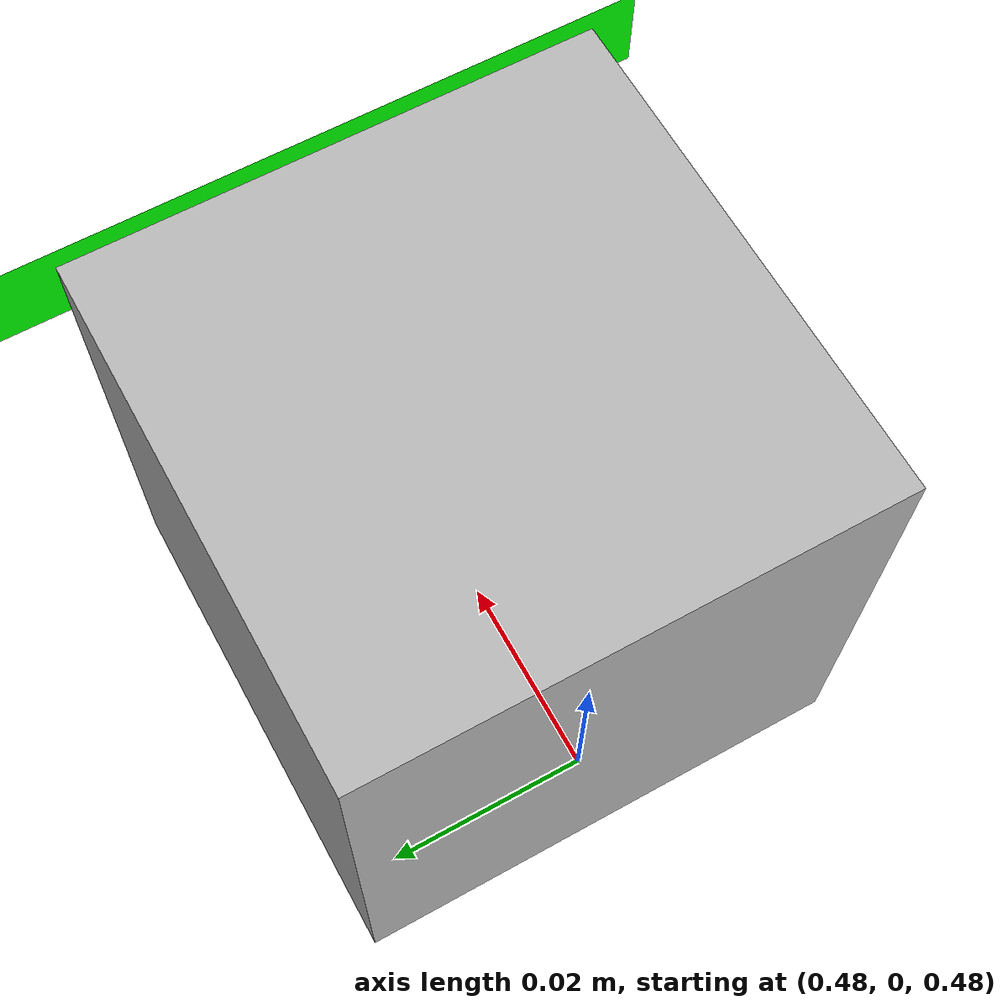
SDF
<sdf version="1.6">
  <world name="arm_world">
    <include>
      <uri>model://ground_plane</uri>
    </include>
    <include>
      <uri>model://sun</uri>
    </include>

    <!-- Objet à attraper -->
    <model name="box">
      <pose>0.5 0 0.5 0 0 0</pose>
      <link name="link">
        <collision name="collision">
          <geometry>
            <box><size>0.05 0.05 0.05</size></box>
          </geometry>
        </collision>
        <visual name="visual">
          <geometry>
            <box><size>0.05 0.05 0.05</size></box>
          </geometry>
        </visual>
      </link>
    </model>

    <!-- Zone de dépôt -->
    <model name="drop_zone">
      <pose>1.0 0 0.5 0 0 0</pose>
      <link name="link">
        <visual name="visual">
          <geometry>
            <box><size>0.2 0.2 0.01</size></box>
          </geometry>
          <material>
            <ambient>0 1 0 1</ambient>
          </material>
        </visual>
      </link>
    </model>
  </world>
</sdf>
